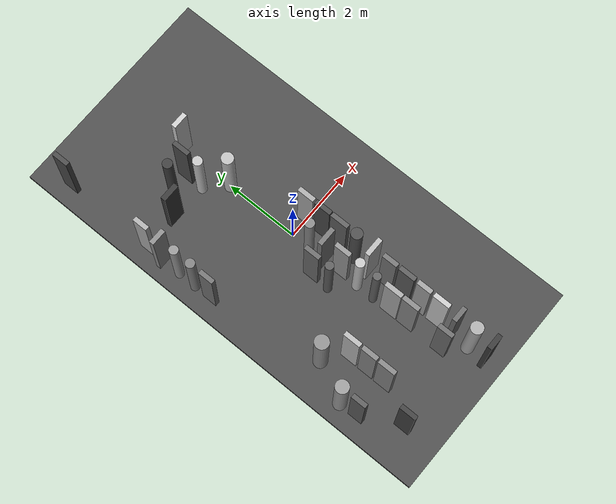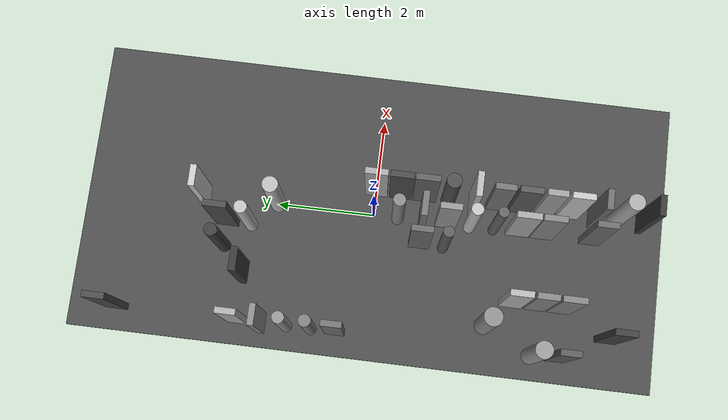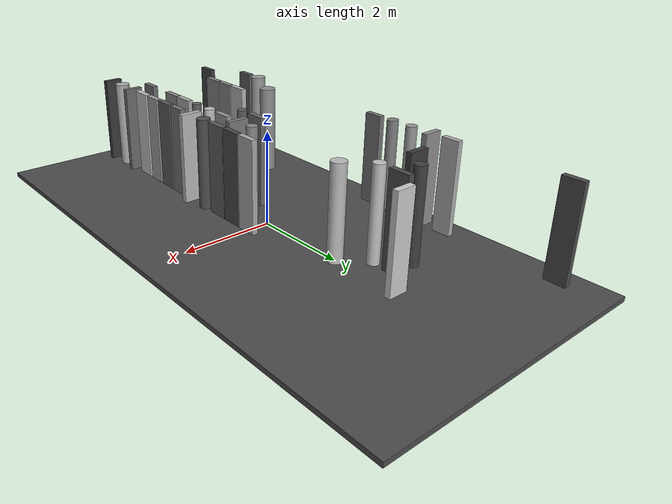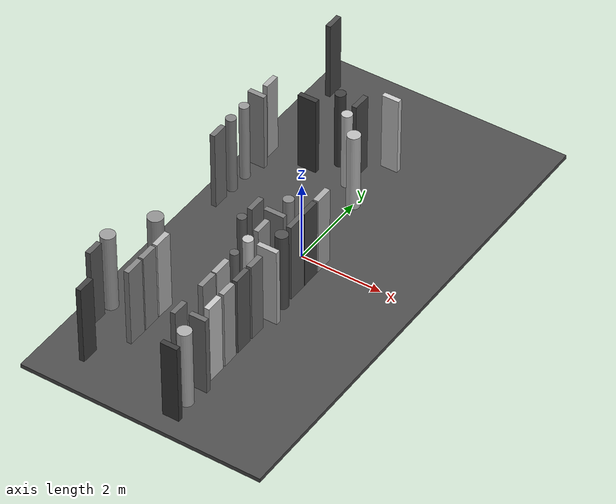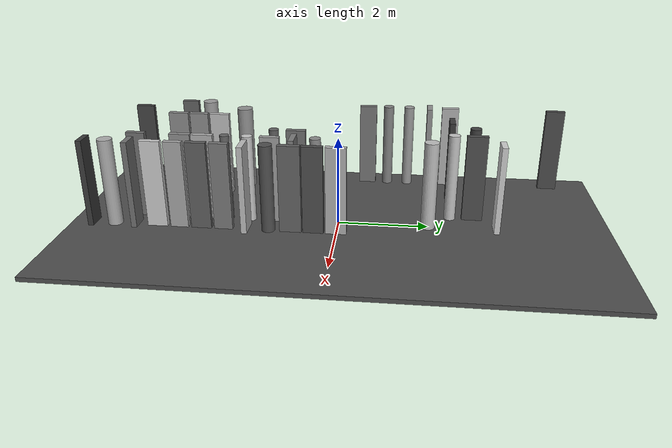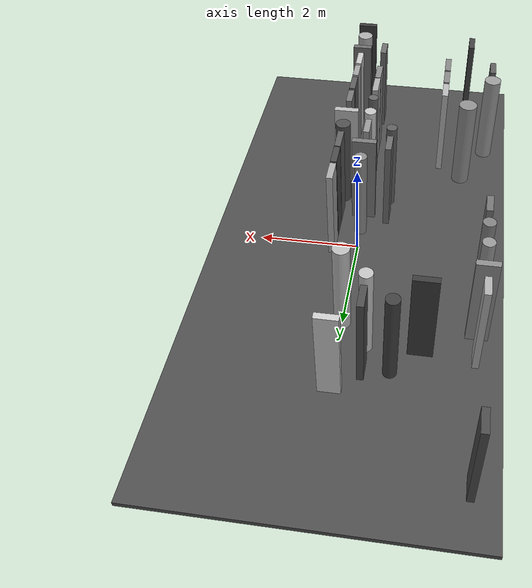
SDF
<sdf version="1.7">
 <world name="default">
  <model name="ground_plane">
   <static>true</static>
   <link name="link">
    <pose>0.0 0.0 -0.05 0 0 0</pose>
    <visual name="visual">
     <material>
      <ambient>0.3007133506330439 0.3007133506330439 0.3007133506330439 1</ambient>
      <diffuse>0.3007133506330439 0.3007133506330439 0.3007133506330439 1</diffuse>
     </material>
     <geometry><box><size>6.0 12.0 0.1</size></box></geometry>
    </visual>
    <collision name="collision">
     <geometry><box><size>6.0 12.0 0.1</size></box></geometry>
     <surface>
      <friction><ode><mu>100</mu><mu2>50.0</mu2><slip1>0.0</slip1><slip2>0.0</slip2></ode></friction>
      <contact><ode><kp>10000.0</kp><kd>100.0</kd></ode></contact>
     </surface>
    </collision>
   </link>
  </model>
  <model name="pn_wall_0">
   <static>true</static>
   <link name="link">
    <pose>-2.5 -4.0 1.0 0 0 0</pose>
    <visual name="visual">
     <material>
      <ambient>0.3650175910214716 0.3650175910214716 0.3650175910214716 1</ambient>
      <diffuse>0.3650175910214716 0.3650175910214716 0.3650175910214716 1</diffuse>
     </material>
     <geometry><box><size>0.125 0.4025010755222667 2.0</size></box></geometry>
    </visual>
    <collision name="collision">
     <geometry><box><size>0.125 0.4025010755222667 2.0</size></box></geometry>
     <surface>
      <friction><ode><mu>100</mu><mu2>50.0</mu2><slip1>0.0</slip1><slip2>0.0</slip2></ode></friction>
      <contact><ode><kp>10000.0</kp><kd>100.0</kd></ode></contact>
     </surface>
    </collision>
   </link>
  </model>
  <model name="pn_pillar_1">
   <static>true</static>
   <link name="link">
    <pose>-2.5 -3.5 1.0 0 0 0</pose>
    <visual name="visual">
     <material>
      <ambient>0.6060196924537469 0.6060196924537469 0.6060196924537469 1</ambient>
      <diffuse>0.6060196924537469 0.6060196924537469 0.6060196924537469 1</diffuse>
     </material>
     <geometry><cylinder><radius>0.17364712141640126</radius><length>2.0</length></cylinder></geometry>
    </visual>
    <collision name="collision">
     <geometry><cylinder><radius>0.17364712141640126</radius><length>2.0</length></cylinder></geometry>
     <surface>
      <friction><ode><mu>100</mu><mu2>50.0</mu2><slip1>0.0</slip1><slip2>0.0</slip2></ode></friction>
      <contact><ode><kp>10000.0</kp><kd>100.0</kd></ode></contact>
     </surface>
    </collision>
   </link>
  </model>
  <model name="pn_wall_2">
   <static>true</static>
   <link name="link">
    <pose>-2.5 0.5 1.0 0 0 0</pose>
    <visual name="visual">
     <material>
      <ambient>0.4531530918111623 0.4531530918111623 0.4531530918111623 1</ambient>
      <diffuse>0.4531530918111623 0.4531530918111623 0.4531530918111623 1</diffuse>
     </material>
     <geometry><box><size>0.125 0.40869388326294165 2.0</size></box></geometry>
    </visual>
    <collision name="collision">
     <geometry><box><size>0.125 0.40869388326294165 2.0</size></box></geometry>
     <surface>
      <friction><ode><mu>100</mu><mu2>50.0</mu2><slip1>0.0</slip1><slip2>0.0</slip2></ode></friction>
      <contact><ode><kp>10000.0</kp><kd>100.0</kd></ode></contact>
     </surface>
    </collision>
   </link>
  </model>
  <model name="pn_pillar_3">
   <static>true</static>
   <link name="link">
    <pose>-2.5 1.0 1.0 0 0 0</pose>
    <visual name="visual">
     <material>
      <ambient>0.5032131728620175 0.5032131728620175 0.5032131728620175 1</ambient>
      <diffuse>0.5032131728620175 0.5032131728620175 0.5032131728620175 1</diffuse>
     </material>
     <geometry><cylinder><radius>0.12186379748036034</radius><length>2.0</length></cylinder></geometry>
    </visual>
    <collision name="collision">
     <geometry><cylinder><radius>0.12186379748036034</radius><length>2.0</length></cylinder></geometry>
     <surface>
      <friction><ode><mu>100</mu><mu2>50.0</mu2><slip1>0.0</slip1><slip2>0.0</slip2></ode></friction>
      <contact><ode><kp>10000.0</kp><kd>100.0</kd></ode></contact>
     </surface>
    </collision>
   </link>
  </model>
  <model name="pn_pillar_4">
   <static>true</static>
   <link name="link">
    <pose>-2.5 1.5 1.0 0 0 0</pose>
    <visual name="visual">
     <material>
      <ambient>0.589930662667714 0.589930662667714 0.589930662667714 1</ambient>
      <diffuse>0.589930662667714 0.589930662667714 0.589930662667714 1</diffuse>
     </material>
     <geometry><cylinder><radius>0.11988376506866485</radius><length>2.0</length></cylinder></geometry>
    </visual>
    <collision name="collision">
     <geometry><cylinder><radius>0.11988376506866485</radius><length>2.0</length></cylinder></geometry>
     <surface>
      <friction><ode><mu>100</mu><mu2>50.0</mu2><slip1>0.0</slip1><slip2>0.0</slip2></ode></friction>
      <contact><ode><kp>10000.0</kp><kd>100.0</kd></ode></contact>
     </surface>
    </collision>
   </link>
  </model>
  <model name="pn_wall_5">
   <static>true</static>
   <link name="link">
    <pose>-2.5 2.0 1.0 0 0 0</pose>
    <visual name="visual">
     <material>
      <ambient>0.5535594103255452 0.5535594103255452 0.5535594103255452 1</ambient>
      <diffuse>0.5535594103255452 0.5535594103255452 0.5535594103255452 1</diffuse>
     </material>
     <geometry><box><size>0.4220440622040697 0.125 2.0</size></box></geometry>
    </visual>
    <collision name="collision">
     <geometry><box><size>0.4220440622040697 0.125 2.0</size></box></geometry>
     <surface>
      <friction><ode><mu>100</mu><mu2>50.0</mu2><slip1>0.0</slip1><slip2>0.0</slip2></ode></friction>
      <contact><ode><kp>10000.0</kp><kd>100.0</kd></ode></contact>
     </surface>
    </collision>
   </link>
  </model>
  <model name="pn_wall_6">
   <static>true</static>
   <link name="link">
    <pose>-2.5 2.5 1.0 0 0 0</pose>
    <visual name="visual">
     <material>
      <ambient>0.6834915510996848 0.6834915510996848 0.6834915510996848 1</ambient>
      <diffuse>0.6834915510996848 0.6834915510996848 0.6834915510996848 1</diffuse>
     </material>
     <geometry><box><size>0.125 0.4006498759678061 2.0</size></box></geometry>
    </visual>
    <collision name="collision">
     <geometry><box><size>0.125 0.4006498759678061 2.0</size></box></geometry>
     <surface>
      <friction><ode><mu>100</mu><mu2>50.0</mu2><slip1>0.0</slip1><slip2>0.0</slip2></ode></friction>
      <contact><ode><kp>10000.0</kp><kd>100.0</kd></ode></contact>
     </surface>
    </collision>
   </link>
  </model>
  <model name="pn_wall_7">
   <static>true</static>
   <link name="link">
    <pose>-2.5 5.0 1.0 0 0 0</pose>
    <visual name="visual">
     <material>
      <ambient>0.29328769988706893 0.29328769988706893 0.29328769988706893 1</ambient>
      <diffuse>0.29328769988706893 0.29328769988706893 0.29328769988706893 1</diffuse>
     </material>
     <geometry><box><size>0.125 0.4340250516517992 2.0</size></box></geometry>
    </visual>
    <collision name="collision">
     <geometry><box><size>0.125 0.4340250516517992 2.0</size></box></geometry>
     <surface>
      <friction><ode><mu>100</mu><mu2>50.0</mu2><slip1>0.0</slip1><slip2>0.0</slip2></ode></friction>
      <contact><ode><kp>10000.0</kp><kd>100.0</kd></ode></contact>
     </surface>
    </collision>
   </link>
  </model>
  <model name="pn_wall_8">
   <static>true</static>
   <link name="link">
    <pose>-2.0 -5.0 1.0 0 0 0</pose>
    <visual name="visual">
     <material>
      <ambient>0.2556475060280888 0.2556475060280888 0.2556475060280888 1</ambient>
      <diffuse>0.2556475060280888 0.2556475060280888 0.2556475060280888 1</diffuse>
     </material>
     <geometry><box><size>0.125 0.4336594545112627 2.0</size></box></geometry>
    </visual>
    <collision name="collision">
     <geometry><box><size>0.125 0.4336594545112627 2.0</size></box></geometry>
     <surface>
      <friction><ode><mu>100</mu><mu2>50.0</mu2><slip1>0.0</slip1><slip2>0.0</slip2></ode></friction>
      <contact><ode><kp>10000.0</kp><kd>100.0</kd></ode></contact>
     </surface>
    </collision>
   </link>
  </model>
  <model name="pn_pillar_9">
   <static>true</static>
   <link name="link">
    <pose>-2.0 -2.5 1.0 0 0 0</pose>
    <visual name="visual">
     <material>
      <ambient>0.5622356188201347 0.5622356188201347 0.5622356188201347 1</ambient>
      <diffuse>0.5622356188201347 0.5622356188201347 0.5622356188201347 1</diffuse>
     </material>
     <geometry><cylinder><radius>0.184749436634746</radius><length>2.0</length></cylinder></geometry>
    </visual>
    <collision name="collision">
     <geometry><cylinder><radius>0.184749436634746</radius><length>2.0</length></cylinder></geometry>
     <surface>
      <friction><ode><mu>100</mu><mu2>50.0</mu2><slip1>0.0</slip1><slip2>0.0</slip2></ode></friction>
      <contact><ode><kp>10000.0</kp><kd>100.0</kd></ode></contact>
     </surface>
    </collision>
   </link>
  </model>
  <model name="pn_wall_10">
   <static>true</static>
   <link name="link">
    <pose>-1.5 -4.0 1.0 0 0 0</pose>
    <visual name="visual">
     <material>
      <ambient>0.5217368548728205 0.5217368548728205 0.5217368548728205 1</ambient>
      <diffuse>0.5217368548728205 0.5217368548728205 0.5217368548728205 1</diffuse>
     </material>
     <geometry><box><size>0.125 0.4729731786693818 2.0</size></box></geometry>
    </visual>
    <collision name="collision">
     <geometry><box><size>0.125 0.4729731786693818 2.0</size></box></geometry>
     <surface>
      <friction><ode><mu>100</mu><mu2>50.0</mu2><slip1>0.0</slip1><slip2>0.0</slip2></ode></friction>
      <contact><ode><kp>10000.0</kp><kd>100.0</kd></ode></contact>
     </surface>
    </collision>
   </link>
  </model>
  <model name="pn_wall_11">
   <static>true</static>
   <link name="link">
    <pose>-1.5 -3.5 1.0 0 0 0</pose>
    <visual name="visual">
     <material>
      <ambient>0.5312243787639362 0.5312243787639362 0.5312243787639362 1</ambient>
      <diffuse>0.5312243787639362 0.5312243787639362 0.5312243787639362 1</diffuse>
     </material>
     <geometry><box><size>0.125 0.43785343772083535 2.0</size></box></geometry>
    </visual>
    <collision name="collision">
     <geometry><box><size>0.125 0.43785343772083535 2.0</size></box></geometry>
     <surface>
      <friction><ode><mu>100</mu><mu2>50.0</mu2><slip1>0.0</slip1><slip2>0.0</slip2></ode></friction>
      <contact><ode><kp>10000.0</kp><kd>100.0</kd></ode></contact>
     </surface>
    </collision>
   </link>
  </model>
  <model name="pn_wall_12">
   <static>true</static>
   <link name="link">
    <pose>-1.5 -3.0 1.0 0 0 0</pose>
    <visual name="visual">
     <material>
      <ambient>0.7170241401864663 0.7170241401864663 0.7170241401864663 1</ambient>
      <diffuse>0.7170241401864663 0.7170241401864663 0.7170241401864663 1</diffuse>
     </material>
     <geometry><box><size>0.125 0.46185197523642463 2.0</size></box></geometry>
    </visual>
    <collision name="collision">
     <geometry><box><size>0.125 0.46185197523642463 2.0</size></box></geometry>
     <surface>
      <friction><ode><mu>100</mu><mu2>50.0</mu2><slip1>0.0</slip1><slip2>0.0</slip2></ode></friction>
      <contact><ode><kp>10000.0</kp><kd>100.0</kd></ode></contact>
     </surface>
    </collision>
   </link>
  </model>
  <model name="pn_wall_13">
   <static>true</static>
   <link name="link">
    <pose>-1.5 2.5 1.0 0 0 0</pose>
    <visual name="visual">
     <material>
      <ambient>0.22749463019339733 0.22749463019339733 0.22749463019339733 1</ambient>
      <diffuse>0.22749463019339733 0.22749463019339733 0.22749463019339733 1</diffuse>
     </material>
     <geometry><box><size>0.47045718362149236 0.125 2.0</size></box></geometry>
    </visual>
    <collision name="collision">
     <geometry><box><size>0.47045718362149236 0.125 2.0</size></box></geometry>
     <surface>
      <friction><ode><mu>100</mu><mu2>50.0</mu2><slip1>0.0</slip1><slip2>0.0</slip2></ode></friction>
      <contact><ode><kp>10000.0</kp><kd>100.0</kd></ode></contact>
     </surface>
    </collision>
   </link>
  </model>
  <model name="pn_pillar_14">
   <static>true</static>
   <link name="link">
    <pose>-1.0 3.0 1.0 0 0 0</pose>
    <visual name="visual">
     <material>
      <ambient>0.24787518615417653 0.24787518615417653 0.24787518615417653 1</ambient>
      <diffuse>0.24787518615417653 0.24787518615417653 0.24787518615417653 1</diffuse>
     </material>
     <geometry><cylinder><radius>0.12893879636021072</radius><length>2.0</length></cylinder></geometry>
    </visual>
    <collision name="collision">
     <geometry><cylinder><radius>0.12893879636021072</radius><length>2.0</length></cylinder></geometry>
     <surface>
      <friction><ode><mu>100</mu><mu2>50.0</mu2><slip1>0.0</slip1><slip2>0.0</slip2></ode></friction>
      <contact><ode><kp>10000.0</kp><kd>100.0</kd></ode></contact>
     </surface>
    </collision>
   </link>
  </model>
  <model name="pn_pillar_15">
   <static>true</static>
   <link name="link">
    <pose>-0.5 -1.5 1.0 0 0 0</pose>
    <visual name="visual">
     <material>
      <ambient>0.36678416186605534 0.36678416186605534 0.36678416186605534 1</ambient>
      <diffuse>0.36678416186605534 0.36678416186605534 0.36678416186605534 1</diffuse>
     </material>
     <geometry><cylinder><radius>0.11010014294097292</radius><length>2.0</length></cylinder></geometry>
    </visual>
    <collision name="collision">
     <geometry><cylinder><radius>0.11010014294097292</radius><length>2.0</length></cylinder></geometry>
     <surface>
      <friction><ode><mu>100</mu><mu2>50.0</mu2><slip1>0.0</slip1><slip2>0.0</slip2></ode></friction>
      <contact><ode><kp>10000.0</kp><kd>100.0</kd></ode></contact>
     </surface>
    </collision>
   </link>
  </model>
  <model name="pn_wall_16">
   <static>true</static>
   <link name="link">
    <pose>-0.5 -1.0 1.0 0 0 0</pose>
    <visual name="visual">
     <material>
      <ambient>0.42210858027012965 0.42210858027012965 0.42210858027012965 1</ambient>
      <diffuse>0.42210858027012965 0.42210858027012965 0.42210858027012965 1</diffuse>
     </material>
     <geometry><box><size>0.125 0.43648321789700845 2.0</size></box></geometry>
    </visual>
    <collision name="collision">
     <geometry><box><size>0.125 0.43648321789700845 2.0</size></box></geometry>
     <surface>
      <friction><ode><mu>100</mu><mu2>50.0</mu2><slip1>0.0</slip1><slip2>0.0</slip2></ode></friction>
      <contact><ode><kp>10000.0</kp><kd>100.0</kd></ode></contact>
     </surface>
    </collision>
   </link>
  </model>
  <model name="pn_pillar_17">
   <static>true</static>
   <link name="link">
    <pose>-0.5 2.5 1.0 0 0 0</pose>
    <visual name="visual">
     <material>
      <ambient>0.7619927526274966 0.7619927526274966 0.7619927526274966 1</ambient>
      <diffuse>0.7619927526274966 0.7619927526274966 0.7619927526274966 1</diffuse>
     </material>
     <geometry><cylinder><radius>0.12669778220491135</radius><length>2.0</length></cylinder></geometry>
    </visual>
    <collision name="collision">
     <geometry><cylinder><radius>0.12669778220491135</radius><length>2.0</length></cylinder></geometry>
     <surface>
      <friction><ode><mu>100</mu><mu2>50.0</mu2><slip1>0.0</slip1><slip2>0.0</slip2></ode></friction>
      <contact><ode><kp>10000.0</kp><kd>100.0</kd></ode></contact>
     </surface>
    </collision>
   </link>
  </model>
  <model name="pn_wall_18">
   <static>true</static>
   <link name="link">
    <pose>-0.5 3.0 1.0 0 0 0</pose>
    <visual name="visual">
     <material>
      <ambient>0.3026831889188582 0.3026831889188582 0.3026831889188582 1</ambient>
      <diffuse>0.3026831889188582 0.3026831889188582 0.3026831889188582 1</diffuse>
     </material>
     <geometry><box><size>0.125 0.4609131005666988 2.0</size></box></geometry>
    </visual>
    <collision name="collision">
     <geometry><box><size>0.125 0.4609131005666988 2.0</size></box></geometry>
     <surface>
      <friction><ode><mu>100</mu><mu2>50.0</mu2><slip1>0.0</slip1><slip2>0.0</slip2></ode></friction>
      <contact><ode><kp>10000.0</kp><kd>100.0</kd></ode></contact>
     </surface>
    </collision>
   </link>
  </model>
  <model name="pn_wall_19">
   <static>true</static>
   <link name="link">
    <pose>0.0 -4.5 1.0 0 0 0</pose>
    <visual name="visual">
     <material>
      <ambient>0.4276732650545887 0.4276732650545887 0.4276732650545887 1</ambient>
      <diffuse>0.4276732650545887 0.4276732650545887 0.4276732650545887 1</diffuse>
     </material>
     <geometry><box><size>0.125 0.41634024937619285 2.0</size></box></geometry>
    </visual>
    <collision name="collision">
     <geometry><box><size>0.125 0.41634024937619285 2.0</size></box></geometry>
     <surface>
      <friction><ode><mu>100</mu><mu2>50.0</mu2><slip1>0.0</slip1><slip2>0.0</slip2></ode></friction>
      <contact><ode><kp>10000.0</kp><kd>100.0</kd></ode></contact>
     </surface>
    </collision>
   </link>
  </model>
  <model name="pn_wall_20">
   <static>true</static>
   <link name="link">
    <pose>0.0 -3.5 1.0 0 0 0</pose>
    <visual name="visual">
     <material>
      <ambient>0.5341698462647878 0.5341698462647878 0.5341698462647878 1</ambient>
      <diffuse>0.5341698462647878 0.5341698462647878 0.5341698462647878 1</diffuse>
     </material>
     <geometry><box><size>0.125 0.4639999759854093 2.0</size></box></geometry>
    </visual>
    <collision name="collision">
     <geometry><box><size>0.125 0.4639999759854093 2.0</size></box></geometry>
     <surface>
      <friction><ode><mu>100</mu><mu2>50.0</mu2><slip1>0.0</slip1><slip2>0.0</slip2></ode></friction>
      <contact><ode><kp>10000.0</kp><kd>100.0</kd></ode></contact>
     </surface>
    </collision>
   </link>
  </model>
  <model name="pn_wall_21">
   <static>true</static>
   <link name="link">
    <pose>0.0 -3.0 1.0 0 0 0</pose>
    <visual name="visual">
     <material>
      <ambient>0.6655999469277469 0.6655999469277469 0.6655999469277469 1</ambient>
      <diffuse>0.6655999469277469 0.6655999469277469 0.6655999469277469 1</diffuse>
     </material>
     <geometry><box><size>0.125 0.48428519201898096 2.0</size></box></geometry>
    </visual>
    <collision name="collision">
     <geometry><box><size>0.125 0.48428519201898096 2.0</size></box></geometry>
     <surface>
      <friction><ode><mu>100</mu><mu2>50.0</mu2><slip1>0.0</slip1><slip2>0.0</slip2></ode></friction>
      <contact><ode><kp>10000.0</kp><kd>100.0</kd></ode></contact>
     </surface>
    </collision>
   </link>
  </model>
  <model name="pn_pillar_22">
   <static>true</static>
   <link name="link">
    <pose>0.0 -2.5 1.0 0 0 0</pose>
    <visual name="visual">
     <material>
      <ambient>0.3892718288354492 0.3892718288354492 0.3892718288354492 1</ambient>
      <diffuse>0.3892718288354492 0.3892718288354492 0.3892718288354492 1</diffuse>
     </material>
     <geometry><cylinder><radius>0.10321002439040378</radius><length>2.0</length></cylinder></geometry>
    </visual>
    <collision name="collision">
     <geometry><cylinder><radius>0.10321002439040378</radius><length>2.0</length></cylinder></geometry>
     <surface>
      <friction><ode><mu>100</mu><mu2>50.0</mu2><slip1>0.0</slip1><slip2>0.0</slip2></ode></friction>
      <contact><ode><kp>10000.0</kp><kd>100.0</kd></ode></contact>
     </surface>
    </collision>
   </link>
  </model>
  <model name="pn_pillar_23">
   <static>true</static>
   <link name="link">
    <pose>0.0 -2.0 1.0 0 0 0</pose>
    <visual name="visual">
     <material>
      <ambient>0.7657458286010328 0.7657458286010328 0.7657458286010328 1</ambient>
      <diffuse>0.7657458286010328 0.7657458286010328 0.7657458286010328 1</diffuse>
     </material>
     <geometry><cylinder><radius>0.12109828435863265</radius><length>2.0</length></cylinder></geometry>
    </visual>
    <collision name="collision">
     <geometry><cylinder><radius>0.12109828435863265</radius><length>2.0</length></cylinder></geometry>
     <surface>
      <friction><ode><mu>100</mu><mu2>50.0</mu2><slip1>0.0</slip1><slip2>0.0</slip2></ode></friction>
      <contact><ode><kp>10000.0</kp><kd>100.0</kd></ode></contact>
     </surface>
    </collision>
   </link>
  </model>
  <model name="pn_wall_24">
   <static>true</static>
   <link name="link">
    <pose>0.0 -1.5 1.0 0 0 0</pose>
    <visual name="visual">
     <material>
      <ambient>0.5932631991769282 0.5932631991769282 0.5932631991769282 1</ambient>
      <diffuse>0.5932631991769282 0.5932631991769282 0.5932631991769282 1</diffuse>
     </material>
     <geometry><box><size>0.125 0.4314677880798478 2.0</size></box></geometry>
    </visual>
    <collision name="collision">
     <geometry><box><size>0.125 0.4314677880798478 2.0</size></box></geometry>
     <surface>
      <friction><ode><mu>100</mu><mu2>50.0</mu2><slip1>0.0</slip1><slip2>0.0</slip2></ode></friction>
      <contact><ode><kp>10000.0</kp><kd>100.0</kd></ode></contact>
     </surface>
    </collision>
   </link>
  </model>
  <model name="pn_wall_25">
   <static>true</static>
   <link name="link">
    <pose>0.0 -1.0 1.0 0 0 0</pose>
    <visual name="visual">
     <material>
      <ambient>0.4753111115524393 0.4753111115524393 0.4753111115524393 1</ambient>
      <diffuse>0.4753111115524393 0.4753111115524393 0.4753111115524393 1</diffuse>
     </material>
     <geometry><box><size>0.49145475897405433 0.125 2.0</size></box></geometry>
    </visual>
    <collision name="collision">
     <geometry><box><size>0.49145475897405433 0.125 2.0</size></box></geometry>
     <surface>
      <friction><ode><mu>100</mu><mu2>50.0</mu2><slip1>0.0</slip1><slip2>0.0</slip2></ode></friction>
      <contact><ode><kp>10000.0</kp><kd>100.0</kd></ode></contact>
     </surface>
    </collision>
   </link>
  </model>
  <model name="pn_pillar_26">
   <static>true</static>
   <link name="link">
    <pose>0.0 -0.5 1.0 0 0 0</pose>
    <visual name="visual">
     <material>
      <ambient>0.5368208804978905 0.5368208804978905 0.5368208804978905 1</ambient>
      <diffuse>0.5368208804978905 0.5368208804978905 0.5368208804978905 1</diffuse>
     </material>
     <geometry><cylinder><radius>0.12466275076939835</radius><length>2.0</length></cylinder></geometry>
    </visual>
    <collision name="collision">
     <geometry><cylinder><radius>0.12466275076939835</radius><length>2.0</length></cylinder></geometry>
     <surface>
      <friction><ode><mu>100</mu><mu2>50.0</mu2><slip1>0.0</slip1><slip2>0.0</slip2></ode></friction>
      <contact><ode><kp>10000.0</kp><kd>100.0</kd></ode></contact>
     </surface>
    </collision>
   </link>
  </model>
  <model name="pn_pillar_27">
   <static>true</static>
   <link name="link">
    <pose>0.0 2.0 1.0 0 0 0</pose>
    <visual name="visual">
     <material>
      <ambient>0.7386937301614862 0.7386937301614862 0.7386937301614862 1</ambient>
      <diffuse>0.7386937301614862 0.7386937301614862 0.7386937301614862 1</diffuse>
     </material>
     <geometry><cylinder><radius>0.15845859902235407</radius><length>2.0</length></cylinder></geometry>
    </visual>
    <collision name="collision">
     <geometry><cylinder><radius>0.15845859902235407</radius><length>2.0</length></cylinder></geometry>
     <surface>
      <friction><ode><mu>100</mu><mu2>50.0</mu2><slip1>0.0</slip1><slip2>0.0</slip2></ode></friction>
      <contact><ode><kp>10000.0</kp><kd>100.0</kd></ode></contact>
     </surface>
    </collision>
   </link>
  </model>
  <model name="pn_wall_28">
   <static>true</static>
   <link name="link">
    <pose>0.0 3.5 1.0 0 0 0</pose>
    <visual name="visual">
     <material>
      <ambient>0.7985225638970663 0.7985225638970663 0.7985225638970663 1</ambient>
      <diffuse>0.7985225638970663 0.7985225638970663 0.7985225638970663 1</diffuse>
     </material>
     <geometry><box><size>0.42193207591572834 0.125 2.0</size></box></geometry>
    </visual>
    <collision name="collision">
     <geometry><box><size>0.42193207591572834 0.125 2.0</size></box></geometry>
     <surface>
      <friction><ode><mu>100</mu><mu2>50.0</mu2><slip1>0.0</slip1><slip2>0.0</slip2></ode></friction>
      <contact><ode><kp>10000.0</kp><kd>100.0</kd></ode></contact>
     </surface>
    </collision>
   </link>
  </model>
  <model name="pn_wall_29">
   <static>true</static>
   <link name="link">
    <pose>0.5 -5.5 1.0 0 0 0</pose>
    <visual name="visual">
     <material>
      <ambient>0.22826982525484074 0.22826982525484074 0.22826982525484074 1</ambient>
      <diffuse>0.22826982525484074 0.22826982525484074 0.22826982525484074 1</diffuse>
     </material>
     <geometry><box><size>0.40909094121737943 0.125 2.0</size></box></geometry>
    </visual>
    <collision name="collision">
     <geometry><box><size>0.40909094121737943 0.125 2.0</size></box></geometry>
     <surface>
      <friction><ode><mu>100</mu><mu2>50.0</mu2><slip1>0.0</slip1><slip2>0.0</slip2></ode></friction>
      <contact><ode><kp>10000.0</kp><kd>100.0</kd></ode></contact>
     </surface>
    </collision>
   </link>
  </model>
  <model name="pn_pillar_30">
   <static>true</static>
   <link name="link">
    <pose>0.5 -5.0 1.0 0 0 0</pose>
    <visual name="visual">
     <material>
      <ambient>0.6752476186177785 0.6752476186177785 0.6752476186177785 1</ambient>
      <diffuse>0.6752476186177785 0.6752476186177785 0.6752476186177785 1</diffuse>
     </material>
     <geometry><cylinder><radius>0.162744604170309</radius><length>2.0</length></cylinder></geometry>
    </visual>
    <collision name="collision">
     <geometry><cylinder><radius>0.162744604170309</radius><length>2.0</length></cylinder></geometry>
     <surface>
      <friction><ode><mu>100</mu><mu2>50.0</mu2><slip1>0.0</slip1><slip2>0.0</slip2></ode></friction>
      <contact><ode><kp>10000.0</kp><kd>100.0</kd></ode></contact>
     </surface>
    </collision>
   </link>
  </model>
  <model name="pn_wall_31">
   <static>true</static>
   <link name="link">
    <pose>0.5 -4.5 1.0 0 0 0</pose>
    <visual name="visual">
     <material>
      <ambient>0.4289715719039221 0.4289715719039221 0.4289715719039221 1</ambient>
      <diffuse>0.4289715719039221 0.4289715719039221 0.4289715719039221 1</diffuse>
     </material>
     <geometry><box><size>0.40635277061519576 0.125 2.0</size></box></geometry>
    </visual>
    <collision name="collision">
     <geometry><box><size>0.40635277061519576 0.125 2.0</size></box></geometry>
     <surface>
      <friction><ode><mu>100</mu><mu2>50.0</mu2><slip1>0.0</slip1><slip2>0.0</slip2></ode></friction>
      <contact><ode><kp>10000.0</kp><kd>100.0</kd></ode></contact>
     </surface>
    </collision>
   </link>
  </model>
  <model name="pn_wall_32">
   <static>true</static>
   <link name="link">
    <pose>0.5 -4.0 1.0 0 0 0</pose>
    <visual name="visual">
     <material>
      <ambient>0.7826470265681711 0.7826470265681711 0.7826470265681711 1</ambient>
      <diffuse>0.7826470265681711 0.7826470265681711 0.7826470265681711 1</diffuse>
     </material>
     <geometry><box><size>0.125 0.4529114345099137 2.0</size></box></geometry>
    </visual>
    <collision name="collision">
     <geometry><box><size>0.125 0.4529114345099137 2.0</size></box></geometry>
     <surface>
      <friction><ode><mu>100</mu><mu2>50.0</mu2><slip1>0.0</slip1><slip2>0.0</slip2></ode></friction>
      <contact><ode><kp>10000.0</kp><kd>100.0</kd></ode></contact>
     </surface>
    </collision>
   </link>
  </model>
  <model name="pn_wall_33">
   <static>true</static>
   <link name="link">
    <pose>0.5 -3.5 1.0 0 0 0</pose>
    <visual name="visual">
     <material>
      <ambient>0.6324330916161169 0.6324330916161169 0.6324330916161169 1</ambient>
      <diffuse>0.6324330916161169 0.6324330916161169 0.6324330916161169 1</diffuse>
     </material>
     <geometry><box><size>0.125 0.401148102194282 2.0</size></box></geometry>
    </visual>
    <collision name="collision">
     <geometry><box><size>0.125 0.401148102194282 2.0</size></box></geometry>
     <surface>
      <friction><ode><mu>100</mu><mu2>50.0</mu2><slip1>0.0</slip1><slip2>0.0</slip2></ode></friction>
      <contact><ode><kp>10000.0</kp><kd>100.0</kd></ode></contact>
     </surface>
    </collision>
   </link>
  </model>
  <model name="pn_wall_34">
   <static>true</static>
   <link name="link">
    <pose>0.5 -3.0 1.0 0 0 0</pose>
    <visual name="visual">
     <material>
      <ambient>0.3600951139715257 0.3600951139715257 0.3600951139715257 1</ambient>
      <diffuse>0.3600951139715257 0.3600951139715257 0.3600951139715257 1</diffuse>
     </material>
     <geometry><box><size>0.125 0.45369703304087955 2.0</size></box></geometry>
    </visual>
    <collision name="collision">
     <geometry><box><size>0.125 0.45369703304087955 2.0</size></box></geometry>
     <surface>
      <friction><ode><mu>100</mu><mu2>50.0</mu2><slip1>0.0</slip1><slip2>0.0</slip2></ode></friction>
      <contact><ode><kp>10000.0</kp><kd>100.0</kd></ode></contact>
     </surface>
    </collision>
   </link>
  </model>
  <model name="pn_wall_35">
   <static>true</static>
   <link name="link">
    <pose>0.5 -2.5 1.0 0 0 0</pose>
    <visual name="visual">
     <material>
      <ambient>0.460859150401463 0.460859150401463 0.460859150401463 1</ambient>
      <diffuse>0.460859150401463 0.460859150401463 0.460859150401463 1</diffuse>
     </material>
     <geometry><box><size>0.125 0.41115521735958765 2.0</size></box></geometry>
    </visual>
    <collision name="collision">
     <geometry><box><size>0.125 0.41115521735958765 2.0</size></box></geometry>
     <surface>
      <friction><ode><mu>100</mu><mu2>50.0</mu2><slip1>0.0</slip1><slip2>0.0</slip2></ode></friction>
      <contact><ode><kp>10000.0</kp><kd>100.0</kd></ode></contact>
     </surface>
    </collision>
   </link>
  </model>
  <model name="pn_wall_36">
   <static>true</static>
   <link name="link">
    <pose>0.5 -2.0 1.0 0 0 0</pose>
    <visual name="visual">
     <material>
      <ambient>0.7255117642269164 0.7255117642269164 0.7255117642269164 1</ambient>
      <diffuse>0.7255117642269164 0.7255117642269164 0.7255117642269164 1</diffuse>
     </material>
     <geometry><box><size>0.495381592752108 0.125 2.0</size></box></geometry>
    </visual>
    <collision name="collision">
     <geometry><box><size>0.495381592752108 0.125 2.0</size></box></geometry>
     <surface>
      <friction><ode><mu>100</mu><mu2>50.0</mu2><slip1>0.0</slip1><slip2>0.0</slip2></ode></friction>
      <contact><ode><kp>10000.0</kp><kd>100.0</kd></ode></contact>
     </surface>
    </collision>
   </link>
  </model>
  <model name="pn_pillar_37">
   <static>true</static>
   <link name="link">
    <pose>0.5 -1.5 1.0 0 0 0</pose>
    <visual name="visual">
     <material>
      <ambient>0.3071911283180788 0.3071911283180788 0.3071911283180788 1</ambient>
      <diffuse>0.3071911283180788 0.3071911283180788 0.3071911283180788 1</diffuse>
     </material>
     <geometry><cylinder><radius>0.15005861130502984</radius><length>2.0</length></cylinder></geometry>
    </visual>
    <collision name="collision">
     <geometry><cylinder><radius>0.15005861130502984</radius><length>2.0</length></cylinder></geometry>
     <surface>
      <friction><ode><mu>100</mu><mu2>50.0</mu2><slip1>0.0</slip1><slip2>0.0</slip2></ode></friction>
      <contact><ode><kp>10000.0</kp><kd>100.0</kd></ode></contact>
     </surface>
    </collision>
   </link>
  </model>
  <model name="pn_wall_38">
   <static>true</static>
   <link name="link">
    <pose>0.5 -1.0 1.0 0 0 0</pose>
    <visual name="visual">
     <material>
      <ambient>0.3790668748691798 0.3790668748691798 0.3790668748691798 1</ambient>
      <diffuse>0.3790668748691798 0.3790668748691798 0.3790668748691798 1</diffuse>
     </material>
     <geometry><box><size>0.125 0.4870518569836767 2.0</size></box></geometry>
    </visual>
    <collision name="collision">
     <geometry><box><size>0.125 0.4870518569836767 2.0</size></box></geometry>
     <surface>
      <friction><ode><mu>100</mu><mu2>50.0</mu2><slip1>0.0</slip1><slip2>0.0</slip2></ode></friction>
      <contact><ode><kp>10000.0</kp><kd>100.0</kd></ode></contact>
     </surface>
    </collision>
   </link>
  </model>
  <model name="pn_wall_39">
   <static>true</static>
   <link name="link">
    <pose>0.5 -0.5 1.0 0 0 0</pose>
    <visual name="visual">
     <material>
      <ambient>0.2917035611297809 0.2917035611297809 0.2917035611297809 1</ambient>
      <diffuse>0.2917035611297809 0.2917035611297809 0.2917035611297809 1</diffuse>
     </material>
     <geometry><box><size>0.125 0.46089702114381725 2.0</size></box></geometry>
    </visual>
    <collision name="collision">
     <geometry><box><size>0.125 0.46089702114381725 2.0</size></box></geometry>
     <surface>
      <friction><ode><mu>100</mu><mu2>50.0</mu2><slip1>0.0</slip1><slip2>0.0</slip2></ode></friction>
      <contact><ode><kp>10000.0</kp><kd>100.0</kd></ode></contact>
     </surface>
    </collision>
   </link>
  </model>
  <model name="pn_wall_40">
   <static>true</static>
   <link name="link">
    <pose>0.5 0.0 1.0 0 0 0</pose>
    <visual name="visual">
     <material>
      <ambient>0.6671758871783351 0.6671758871783351 0.6671758871783351 1</ambient>
      <diffuse>0.6671758871783351 0.6671758871783351 0.6671758871783351 1</diffuse>
     </material>
     <geometry><box><size>0.125 0.4539379030119626 2.0</size></box></geometry>
    </visual>
    <collision name="collision">
     <geometry><box><size>0.125 0.4539379030119626 2.0</size></box></geometry>
     <surface>
      <friction><ode><mu>100</mu><mu2>50.0</mu2><slip1>0.0</slip1><slip2>0.0</slip2></ode></friction>
      <contact><ode><kp>10000.0</kp><kd>100.0</kd></ode></contact>
     </surface>
    </collision>
   </link>
  </model>
 </world>
</sdf>
